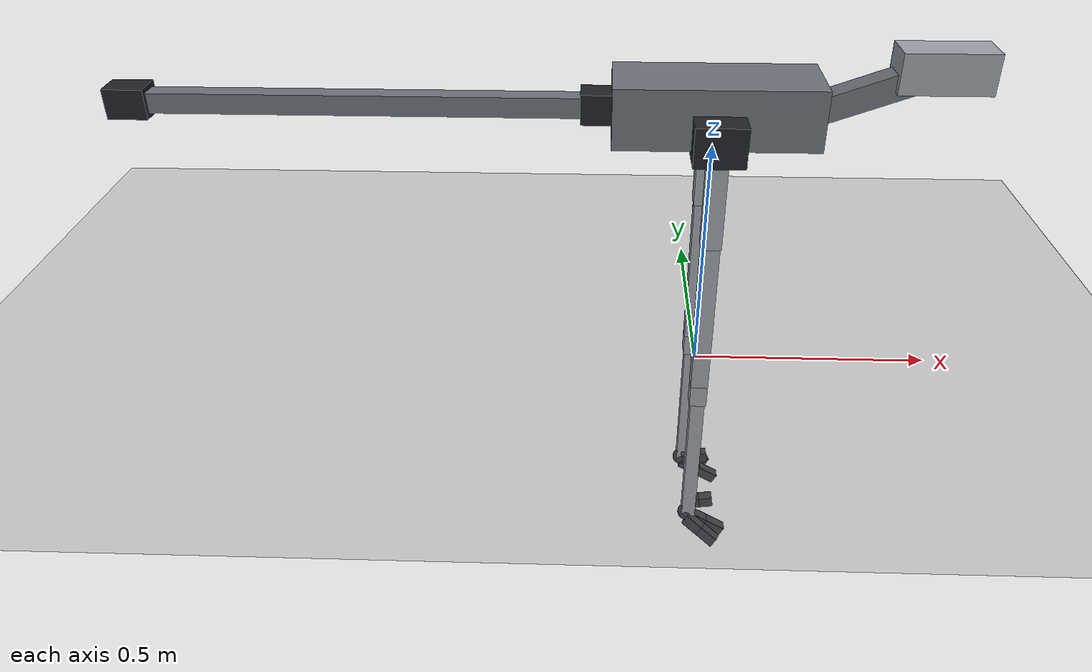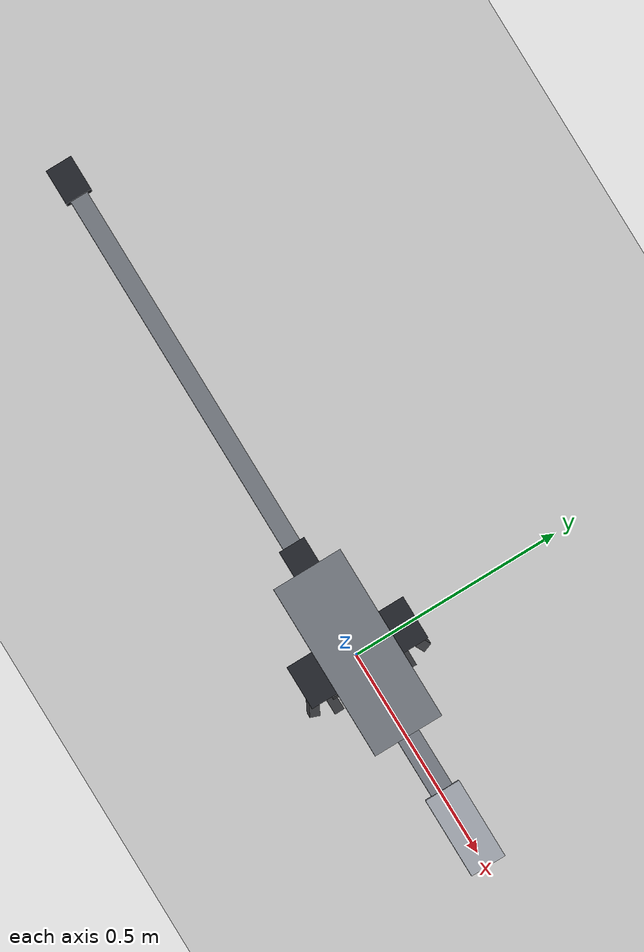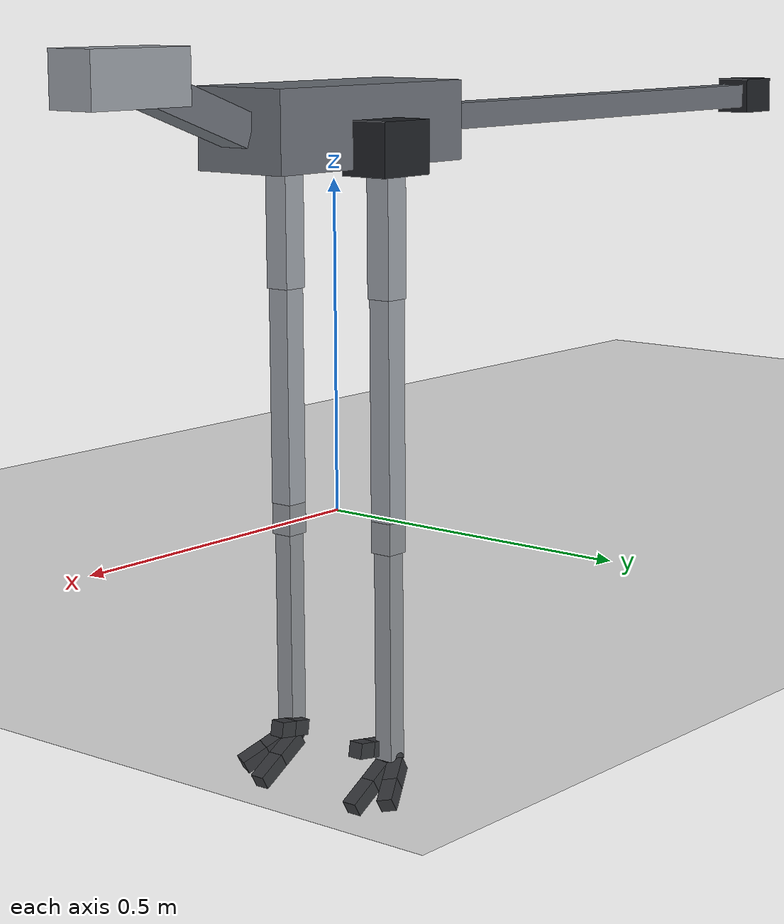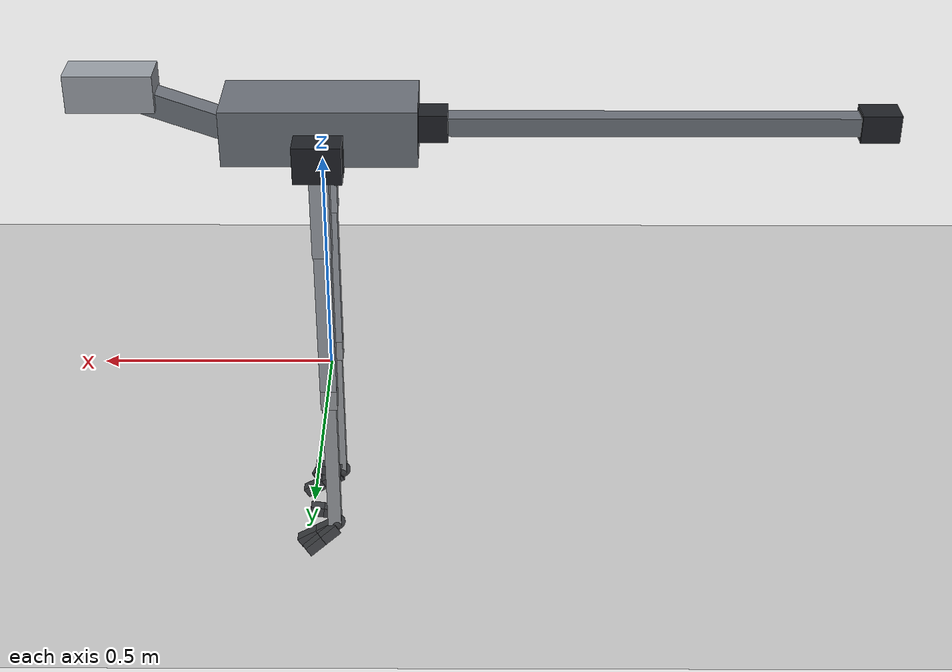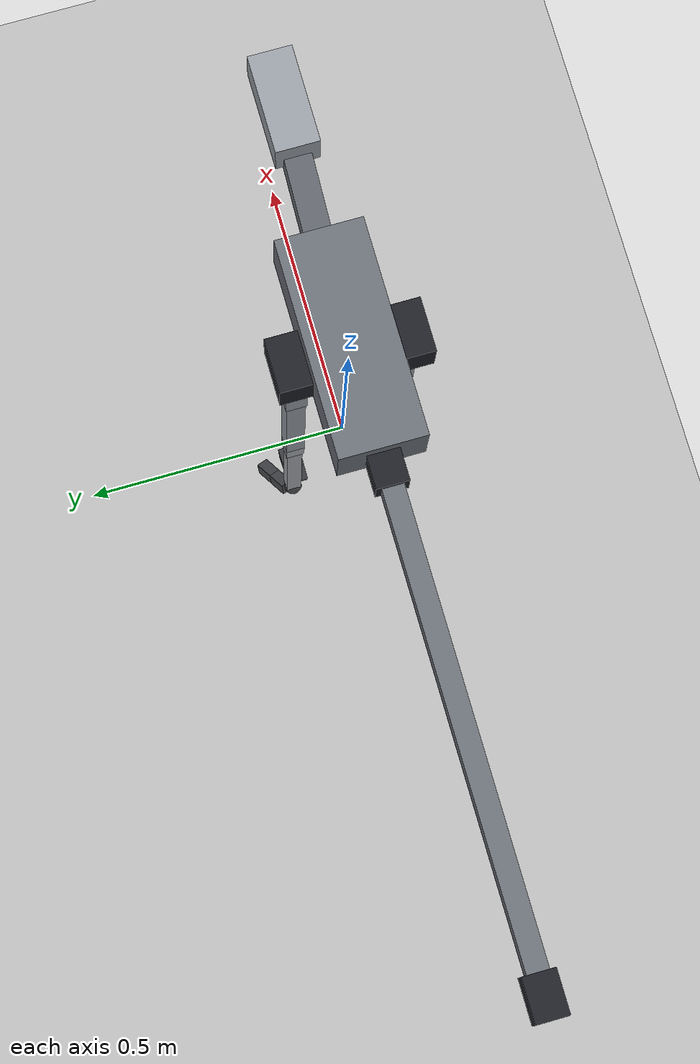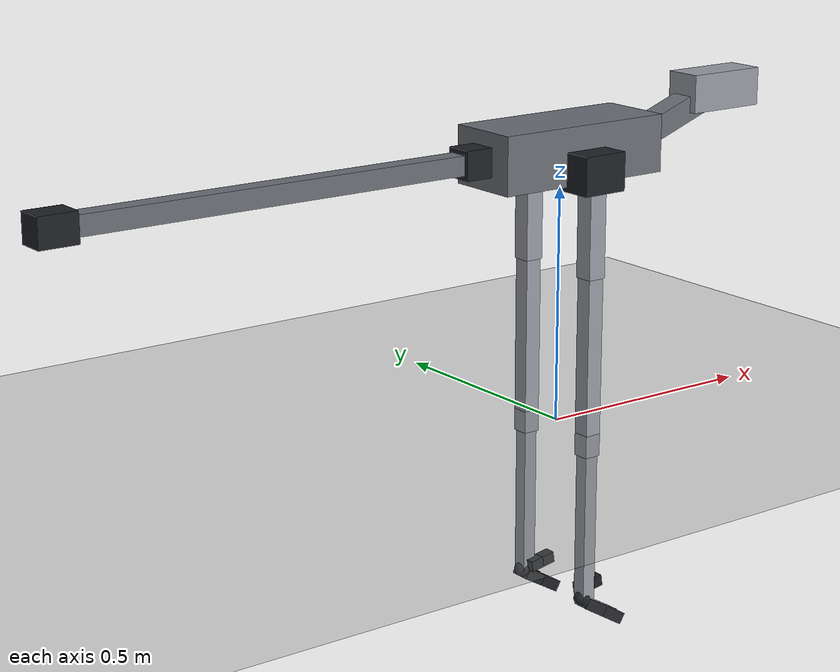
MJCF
<!-- Generated by modeling/build_r02.py from modeling/design_r02.py. Do not edit. -->
<mujoco model="MuJoCo Model">
  <compiler angle="radian"/>

  <option timestep="0.001" integrator="implicitfast" cone="elliptic"/>

  <worldbody>
    <geom name="floor" size="0 0 0.05" type="plane"/>
    <body name="base_root">
      <joint name="floating_base" type="free"/>
      <body name="base_link" pos="0 0 0.58">
        <inertial pos="0 0 0" mass="3.74" diaginertia="0.0124667 0.0543547 0.0578453"/>
        <geom size="0.2 0.08 0.06" type="box" conaffinity="0" rgba="0.42 0.44 0.47 1" mass="0"/>
        <geom size="0.117047 0.025 0.025" pos="0.31 0 0.04" quat="0.984833 0 -0.173503 0" type="box" contype="0" conaffinity="0" rgba="0.42 0.44 0.47 1" mass="0"/>
        <site name="imu"/>
        <body name="head_link" pos="0.42 0 0.08">
          <inertial pos="0 0 0" mass="0.45" diaginertia="0.0018 0.0018 0.0018"/>
          <geom size="0.09 0.04 0.04" type="box" conaffinity="0" rgba="0.6 0.62 0.65 1" mass="0"/>
        </body>
        <body name="left_hip_roll_link" pos="0 0.1 -0.03">
          <inertial pos="0 0 0" mass="2.26" diaginertia="0.004 0.004 0.004"/>
          <joint name="left_hip_roll_joint" range="-0.5 0.5" actuatorfrcrange="-36 36" axis="1 0 0" actuatorfrclimited="true"/>
          <geom size="0.05 0.04 0.04" type="box" contype="0" conaffinity="0" rgba="0.12 0.13 0.15 1" mass="0"/>
          <body name="left_thigh_link">
            <inertial pos="0 0 -0.11" mass="0.282" diaginertia="0.0011656 0.0011656 5.64e-05"/>
            <joint name="left_hip_pitch_joint" range="-1.6 0.9" actuatorfrcrange="-36 36" axis="0 1 0" actuatorfrclimited="true"/>
            <geom size="0.02 0.02 0.11" pos="0 0 -0.11" type="box" conaffinity="0" rgba="0.6 0.62 0.65 1" mass="0"/>
            <body name="left_shin_link" pos="0 0 -0.22">
              <inertial pos="0 0 -0.19" mass="0.228" diaginertia="0.0027664 0.0027664 4.56e-05"/>
              <joint name="left_knee_pitch_joint" range="0.2 2.6" actuatorfrcrange="-36 36" axis="0 1 0" actuatorfrclimited="true"/>
              <geom size="0.018 0.018 0.19" pos="0 0 -0.19" type="box" conaffinity="0" rgba="0.6 0.62 0.65 1" mass="0"/>
              <body name="left_metatarsus_link" pos="0 0 -0.38">
                <inertial pos="0 0 -0.16" mass="0.192" diaginertia="0.0016576 0.0016576 3.84e-05"/>
                <joint name="left_ankle_pitch_joint" range="-2.5 0.2" actuatorfrcrange="-36 36" axis="0 1 0" actuatorfrclimited="true"/>
                <geom size="0.015 0.015 0.16" pos="0 0 -0.16" type="box" conaffinity="0" rgba="0.6 0.62 0.65 1" mass="0"/>
                <body name="left_foot_link" pos="0 0 -0.32" quat="0.964095 0 0.265556 0">
                  <inertial pos="0 0 0" mass="0.04" diaginertia="2e-05 2e-05 2e-05"/>
                  <joint name="left_ankle_roll_joint" range="-0.5 0.5" actuatorfrcrange="-17 17" armature="0.01" axis="1 0 0" actuatorfrclimited="true"/>
                  <geom size="0.018" pos="-0.005 0 -0.002" conaffinity="0" rgba="0.12 0.13 0.15 1" mass="0"/>
                  <body name="left_toe_2_proximal_link" pos="0 -0.006 -0.008">
                    <inertial pos="0.025 0 0" mass="0.01" diaginertia="5e-07 2.33333e-06 2.33333e-06"/>
                    <joint name="left_toe_2_proximal_joint" stiffness="30" range="-0.6 0.9" armature="0.0001" damping="0.05" frictionloss="0.005" axis="0 1 0"/>
                    <geom size="0.025 0.012 0.012" pos="0.025 0 0" type="box" conaffinity="0" priority="1" friction="0.8" rgba="0.12 0.13 0.15 1" mass="0"/>
                    <body name="left_toe_2_distal_link" pos="0.05 0 0">
                      <inertial pos="0.025 0 0" mass="0.01" diaginertia="5e-07 2.33333e-06 2.33333e-06"/>
                      <joint name="left_toe_2_distal_joint" stiffness="20" range="-0.6 0.9" armature="0.0001" damping="0.05" frictionloss="0.005" axis="0 1 0"/>
                      <geom size="0.025 0.012 0.012" pos="0.025 0 0" type="box" conaffinity="0" priority="1" friction="1.2" rgba="0.12 0.13 0.15 1" mass="0"/>
                    </body>
                  </body>
                  <body name="left_toe_1_proximal_link" pos="0 0.012 -0.008" quat="0.978148 0 0 0.207912">
                    <inertial pos="0.02125 0 0" mass="0.01" diaginertia="5e-07 1.75521e-06 1.75521e-06"/>
                    <joint name="left_toe_1_proximal_joint" stiffness="20" range="-0.6 0.9" armature="0.0001" damping="0.05" frictionloss="0.005" axis="0 1 0"/>
                    <geom size="0.02125 0.012 0.012" pos="0.02125 0 0" type="box" conaffinity="0" priority="1" friction="0.8" rgba="0.12 0.13 0.15 1" mass="0"/>
                    <body name="left_toe_1_distal_link" pos="0.0425 0 0">
                      <inertial pos="0.02125 0 0" mass="0.01" diaginertia="5e-07 1.75521e-06 1.75521e-06"/>
                      <joint name="left_toe_1_distal_joint" stiffness="14" range="-0.6 0.9" armature="0.0001" damping="0.05" frictionloss="0.005" axis="0 1 0"/>
                      <geom size="0.02125 0.012 0.012" pos="0.02125 0 0" type="box" conaffinity="0" priority="1" friction="0.8" rgba="0.12 0.13 0.15 1" mass="0"/>
                    </body>
                  </body>
                  <body name="left_toe_3_proximal_link" pos="-0.01 -0.02 0.01" quat="0.939373 0 -0.342898 0">
                    <inertial pos="0.015 0 0" mass="0.01" diaginertia="5e-07 1e-06 1e-06"/>
                    <joint name="left_toe_3_proximal_joint" stiffness="15" range="-0.3 0.3" armature="0.0001" damping="0.05" frictionloss="0.005" axis="0 1 0"/>
                    <geom size="0.015 0.012 0.012" pos="0.015 0 0" type="box" conaffinity="0" priority="1" friction="0.8" rgba="0.12 0.13 0.15 1" mass="0"/>
                    <body name="left_toe_3_distal_link" pos="0.03 0 0">
                      <inertial pos="0.015 0 0" mass="0.01" diaginertia="5e-07 1e-06 1e-06"/>
                      <joint name="left_toe_3_distal_joint" stiffness="10" range="-0.3 0.3" armature="0.0001" damping="0.05" frictionloss="0.005" axis="0 1 0"/>
                      <geom size="0.015 0.012 0.012" pos="0.015 0 0" type="box" conaffinity="0" priority="1" friction="0.8" rgba="0.12 0.13 0.15 1" mass="0"/>
                    </body>
                  </body>
                </body>
              </body>
            </body>
          </body>
        </body>
        <body name="right_hip_roll_link" pos="0 -0.1 -0.03">
          <inertial pos="0 0 0" mass="2.26" diaginertia="0.004 0.004 0.004"/>
          <joint name="right_hip_roll_joint" range="-0.5 0.5" actuatorfrcrange="-36 36" axis="1 0 0" actuatorfrclimited="true"/>
          <geom size="0.05 0.04 0.04" type="box" contype="0" conaffinity="0" rgba="0.12 0.13 0.15 1" mass="0"/>
          <body name="right_thigh_link">
            <inertial pos="0 0 -0.11" mass="0.282" diaginertia="0.0011656 0.0011656 5.64e-05"/>
            <joint name="right_hip_pitch_joint" range="-1.6 0.9" actuatorfrcrange="-36 36" axis="0 1 0" actuatorfrclimited="true"/>
            <geom size="0.02 0.02 0.11" pos="0 0 -0.11" type="box" conaffinity="0" rgba="0.6 0.62 0.65 1" mass="0"/>
            <body name="right_shin_link" pos="0 0 -0.22">
              <inertial pos="0 0 -0.19" mass="0.228" diaginertia="0.0027664 0.0027664 4.56e-05"/>
              <joint name="right_knee_pitch_joint" range="0.2 2.6" actuatorfrcrange="-36 36" axis="0 1 0" actuatorfrclimited="true"/>
              <geom size="0.018 0.018 0.19" pos="0 0 -0.19" type="box" conaffinity="0" rgba="0.6 0.62 0.65 1" mass="0"/>
              <body name="right_metatarsus_link" pos="0 0 -0.38">
                <inertial pos="0 0 -0.16" mass="0.192" diaginertia="0.0016576 0.0016576 3.84e-05"/>
                <joint name="right_ankle_pitch_joint" range="-2.5 0.2" actuatorfrcrange="-36 36" axis="0 1 0" actuatorfrclimited="true"/>
                <geom size="0.015 0.015 0.16" pos="0 0 -0.16" type="box" conaffinity="0" rgba="0.6 0.62 0.65 1" mass="0"/>
                <body name="right_foot_link" pos="0 0 -0.32" quat="0.964095 0 0.265556 0">
                  <inertial pos="0 0 0" mass="0.04" diaginertia="2e-05 2e-05 2e-05"/>
                  <joint name="right_ankle_roll_joint" range="-0.5 0.5" actuatorfrcrange="-17 17" armature="0.01" axis="1 0 0" actuatorfrclimited="true"/>
                  <geom size="0.018" pos="-0.005 0 -0.002" conaffinity="0" rgba="0.12 0.13 0.15 1" mass="0"/>
                  <body name="right_toe_2_proximal_link" pos="0 0.006 -0.008">
                    <inertial pos="0.025 0 0" mass="0.01" diaginertia="5e-07 2.33333e-06 2.33333e-06"/>
                    <joint name="right_toe_2_proximal_joint" stiffness="30" range="-0.6 0.9" armature="0.0001" damping="0.05" frictionloss="0.005" axis="0 1 0"/>
                    <geom size="0.025 0.012 0.012" pos="0.025 0 0" type="box" conaffinity="0" priority="1" friction="0.8" rgba="0.12 0.13 0.15 1" mass="0"/>
                    <body name="right_toe_2_distal_link" pos="0.05 0 0">
                      <inertial pos="0.025 0 0" mass="0.01" diaginertia="5e-07 2.33333e-06 2.33333e-06"/>
                      <joint name="right_toe_2_distal_joint" stiffness="20" range="-0.6 0.9" armature="0.0001" damping="0.05" frictionloss="0.005" axis="0 1 0"/>
                      <geom size="0.025 0.012 0.012" pos="0.025 0 0" type="box" conaffinity="0" priority="1" friction="1.2" rgba="0.12 0.13 0.15 1" mass="0"/>
                    </body>
                  </body>
                  <body name="right_toe_3_proximal_link" pos="0 -0.012 -0.008" quat="0.978148 0 0 -0.207912">
                    <inertial pos="0.02125 0 0" mass="0.01" diaginertia="5e-07 1.75521e-06 1.75521e-06"/>
                    <joint name="right_toe_3_proximal_joint" stiffness="20" range="-0.6 0.9" armature="0.0001" damping="0.05" frictionloss="0.005" axis="0 1 0"/>
                    <geom size="0.02125 0.012 0.012" pos="0.02125 0 0" type="box" conaffinity="0" priority="1" friction="0.8" rgba="0.12 0.13 0.15 1" mass="0"/>
                    <body name="right_toe_3_distal_link" pos="0.0425 0 0">
                      <inertial pos="0.02125 0 0" mass="0.01" diaginertia="5e-07 1.75521e-06 1.75521e-06"/>
                      <joint name="right_toe_3_distal_joint" stiffness="14" range="-0.6 0.9" armature="0.0001" damping="0.05" frictionloss="0.005" axis="0 1 0"/>
                      <geom size="0.02125 0.012 0.012" pos="0.02125 0 0" type="box" conaffinity="0" priority="1" friction="0.8" rgba="0.12 0.13 0.15 1" mass="0"/>
                    </body>
                  </body>
                  <body name="right_toe_1_proximal_link" pos="-0.01 0.02 0.01" quat="0.939373 0 -0.342898 0">
                    <inertial pos="0.015 0 0" mass="0.01" diaginertia="5e-07 1e-06 1e-06"/>
                    <joint name="right_toe_1_proximal_joint" stiffness="15" range="-0.3 0.3" armature="0.0001" damping="0.05" frictionloss="0.005" axis="0 1 0"/>
                    <geom size="0.015 0.012 0.012" pos="0.015 0 0" type="box" conaffinity="0" priority="1" friction="0.8" rgba="0.12 0.13 0.15 1" mass="0"/>
                    <body name="right_toe_1_distal_link" pos="0.03 0 0">
                      <inertial pos="0.015 0 0" mass="0.01" diaginertia="5e-07 1e-06 1e-06"/>
                      <joint name="right_toe_1_distal_joint" stiffness="10" range="-0.3 0.3" armature="0.0001" damping="0.05" frictionloss="0.005" axis="0 1 0"/>
                      <geom size="0.015 0.012 0.012" pos="0.015 0 0" type="box" conaffinity="0" priority="1" friction="0.8" rgba="0.12 0.13 0.15 1" mass="0"/>
                    </body>
                  </body>
                </body>
              </body>
            </body>
          </body>
        </body>
        <body name="tail_yaw_link" pos="-0.2 0 0">
          <inertial pos="0 0 0" mass="0.4" diaginertia="0.0005 0.0005 0.0005"/>
          <joint name="tail_yaw_joint" range="-0.8 0.8" actuatorfrcrange="-36 36" actuatorfrclimited="true"/>
          <geom size="0.04 0.03 0.03" pos="-0.02 0 0" type="box" contype="0" conaffinity="0" rgba="0.12 0.13 0.15 1" mass="0"/>
          <body name="tail_link" pos="-0.04 0 0">
            <inertial pos="-0.726923 0 0" mass="0.65" diaginertia="0.001 0.0480288 0.0480288"/>
            <joint name="tail_pitch_joint" range="-0.6 0.6" actuatorfrcrange="-36 36" axis="0 1 0" actuatorfrclimited="true"/>
            <geom size="0.45 0.02 0.02" pos="-0.45 0 0" type="box" conaffinity="0" rgba="0.42 0.44 0.47 1" mass="0"/>
            <geom size="0.04 0.03 0.03" pos="-0.9 0 0" type="box" conaffinity="0" rgba="0.12 0.13 0.15 1" mass="0"/>
          </body>
        </body>
      </body>
    </body>
  </worldbody>

  <actuator>
    <general name="left_hip_roll_joint" joint="left_hip_roll_joint" ctrlrange="-3 3" ctrllimited="true" forcelimited="true" forcerange="-36 36" biastype="affine" gainprm="100" biasprm="0 0 -100"/>
    <general name="left_hip_pitch_joint" joint="left_hip_pitch_joint" ctrlrange="-3 3" ctrllimited="true" forcelimited="true" forcerange="-36 36" biastype="affine" gainprm="100" biasprm="0 0 -100"/>
    <general name="left_knee_pitch_joint" joint="left_knee_pitch_joint" ctrlrange="-3 3" ctrllimited="true" forcelimited="true" forcerange="-36 36" biastype="affine" gainprm="100" biasprm="0 0 -100"/>
    <general name="left_ankle_pitch_joint" joint="left_ankle_pitch_joint" ctrlrange="-3 3" ctrllimited="true" forcelimited="true" forcerange="-36 36" biastype="affine" gainprm="100" biasprm="0 0 -100"/>
    <general name="left_ankle_roll_joint" joint="left_ankle_roll_joint" ctrlrange="-3 3" ctrllimited="true" forcelimited="true" forcerange="-17 17" biastype="affine" gainprm="100" biasprm="0 0 -100"/>
    <general name="right_hip_roll_joint" joint="right_hip_roll_joint" ctrlrange="-3 3" ctrllimited="true" forcelimited="true" forcerange="-36 36" biastype="affine" gainprm="100" biasprm="0 0 -100"/>
    <general name="right_hip_pitch_joint" joint="right_hip_pitch_joint" ctrlrange="-3 3" ctrllimited="true" forcelimited="true" forcerange="-36 36" biastype="affine" gainprm="100" biasprm="0 0 -100"/>
    <general name="right_knee_pitch_joint" joint="right_knee_pitch_joint" ctrlrange="-3 3" ctrllimited="true" forcelimited="true" forcerange="-36 36" biastype="affine" gainprm="100" biasprm="0 0 -100"/>
    <general name="right_ankle_pitch_joint" joint="right_ankle_pitch_joint" ctrlrange="-3 3" ctrllimited="true" forcelimited="true" forcerange="-36 36" biastype="affine" gainprm="100" biasprm="0 0 -100"/>
    <general name="right_ankle_roll_joint" joint="right_ankle_roll_joint" ctrlrange="-3 3" ctrllimited="true" forcelimited="true" forcerange="-17 17" biastype="affine" gainprm="100" biasprm="0 0 -100"/>
    <general name="tail_yaw_joint" joint="tail_yaw_joint" ctrlrange="-3 3" ctrllimited="true" forcelimited="true" forcerange="-36 36" biastype="affine" gainprm="100" biasprm="0 0 -100"/>
    <general name="tail_pitch_joint" joint="tail_pitch_joint" ctrlrange="-3 3" ctrllimited="true" forcelimited="true" forcerange="-36 36" biastype="affine" gainprm="100" biasprm="0 0 -100"/>
  </actuator>

  <sensor>
    <framequat objtype="site" objname="imu" name="imu_quat"/>
    <gyro site="imu" name="imu_gyro"/>
  </sensor>
</mujoco>
